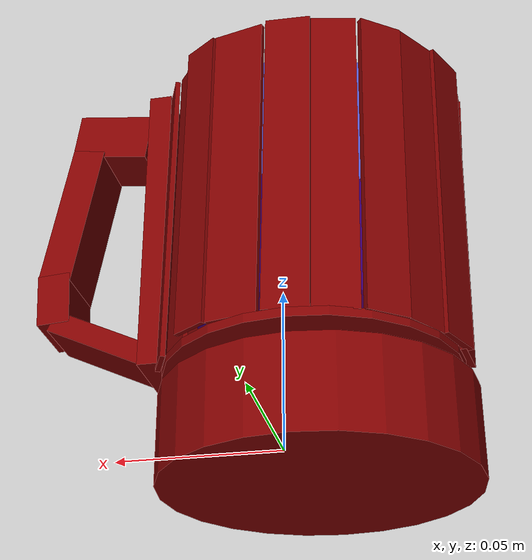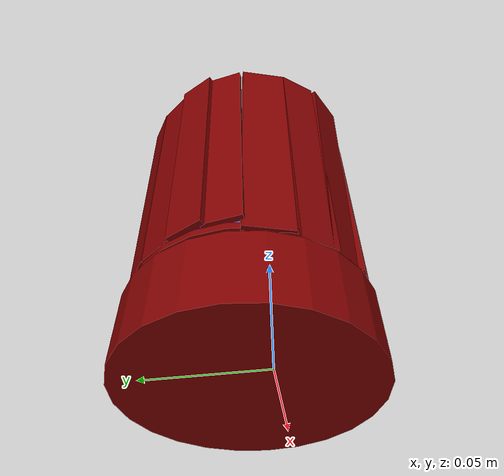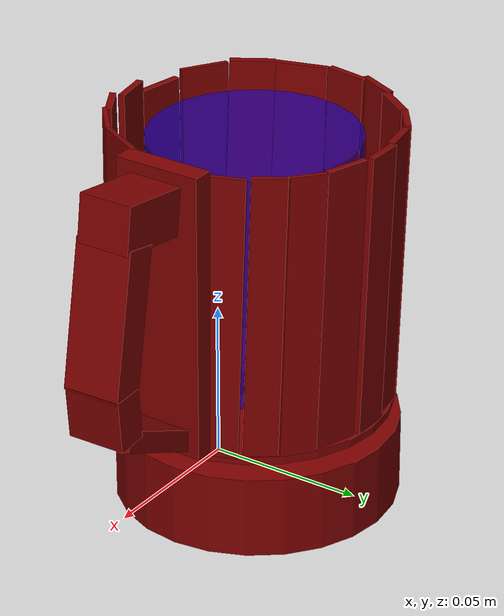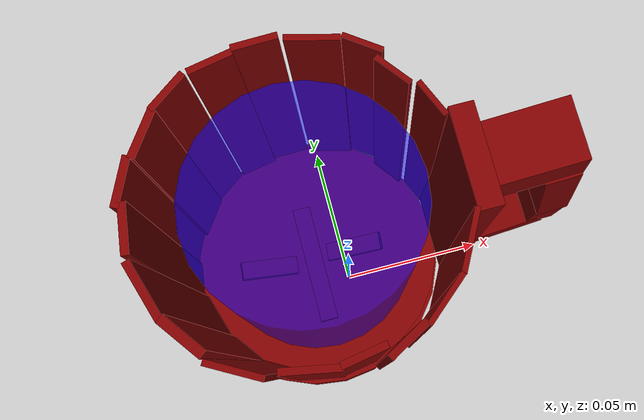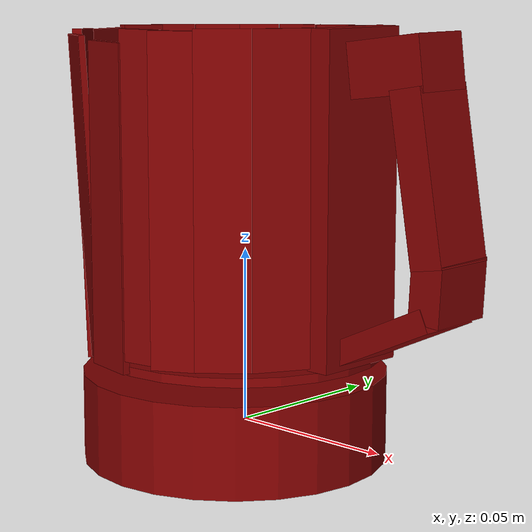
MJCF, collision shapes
<mujoco model="model">
  <option timestep="0.002" gravity="0.0 0.0 -9.81"/>
  <compiler angle="radian"/>
  <asset>
    <mesh file="visuals/blade.obj" name="blade_vis"/>
    <mesh file="visuals/pitcher.obj" name="pitcher_vis"/>
    <mesh file="visuals/pitcher_main.obj" name="pitcher_main_vis"/>
    <texture file="visuals/T_BC001.png" name="pitcher_material" type="2d"/>
    <material name="pitcher_material" rgba="1 1 1 1.0" texture="pitcher_material" shininess="0.7126775979995728" specular="1"/>
    <texture file="visuals/T_BC001.png" name="blade_material" type="2d"/>
    <material name="blade_material" rgba="1 1 1 1.0" texture="blade_material" shininess="0.7126775979995728" specular="1"/>
    <texture file="visuals/T_BC001.png" name="pitcher_main_material" type="2d"/>
    <material name="pitcher_main_material" rgba="1 1 1 0.800000011920929" texture="pitcher_main_material" shininess="0.8092784583568573" specular="1"/>
  </asset>
  <default>
    <default class="visual">
      <geom conaffinity="0" contype="0" group="1" type="mesh"/>
    </default>
    <default class="collision">
      <geom group="0" rgba="0.5 0 0 0.5" density="1.0" solref="0.004 1" solimp="0.998 0.998 0.001"/>
    </default>
    <default class="spawn">
      <geom group="0" rgba="1 1 1 0.5" contype="0" conaffinity="0"/>
      <site group="0" rgba="1 1 1 0.5"/>
    </default>
    <default class="region">
      <geom group="1" conaffinity="0" contype="0" rgba="0 1 0 0" mass="0"/>
    </default>
  </default>
  <worldbody>
    <body>
      <body name="object">
        <body name="pitcher">
          <geom mesh="pitcher_vis" type="mesh" solimp="0.998 0.998 0.001" solref="0.001 1" friction="0.95 0.3 0.1" class="visual" material="pitcher_material"/>
          <geom type="cylinder" pos="-0.01116147 0.00577703 0.00309759" size="0.00906098261475563 0.008652156218886375" quat="1.0 0.0 0.0 0.0" class="collision"/>
          <geom class="collision" type="box" pos="0.06357763 0.00620615 0.07631346" size="0.005088288802653551 0.009546133689582348 0.023384999483823776" quat="0.9961947202682495 0.0 -0.08715573698282242 0.0" name="pitcher_handle_2"/>
          <geom class="collision" type="box" pos="0.05218959 0.00616715 0.10434674" size="0.007519893813878298 0.008824963122606277 0.01210277620702982" quat="0.7518044114112854 -0.0004668088222388178 0.6593855023384094 0.0008093593642115593" name="pitcher_handle_3"/>
          <geom class="collision" type="box" pos="0.05194099 0.00657414 0.03293036" size="0.0033454347867518663 0.009491372853517532 0.016489258036017418" quat="0.843391478061676 0.0 0.5372995734214783 0.0" name="pitcher_handle_0"/>
          <geom type="cylinder" pos="-0.01113476 0.00702684 -0.00106360" size="0.04508111625909805 0.01324945967644453" quat="1.0 0.0 0.0 0.0" class="collision"/>
          <geom class="collision" type="box" pos="0.06706209 0.00668775 0.04700918" size="0.004980669356882572 0.009491369128227234 0.008270477876067162" quat="0.9994047284126282 0.007976321503520012 0.033564552664756775 -0.00021685115643776953" name="pitcher_handle_1"/>
          <body name="blade">
            <geom mesh="blade_vis" type="mesh" solimp="0.998 0.998 0.001" solref="0.001 1" friction="0.95 0.3 0.1" class="visual" material="blade_material"/>
            <geom type="box" pos="-0.01133486 0.00447850 0.02316258" size="0.003073260420933366 0.020795846357941628 0.0011587251210585237" quat="1.0 0.0 0.0 0.0" class="collision"/>
            <geom type="box" pos="-0.02736820 0.00661103 0.02573356" size="0.0030642191413789988 0.010015010833740234 0.0011587272165343165" quat="0.6698104739189148 -0.09623399376869202 0.08818221837282181 -0.7309697866439819" class="collision"/>
            <geom type="box" pos="0.00365382 0.00661103 0.02564197" size="0.0030642191413789988 0.010015010833740234 0.0011587273329496384" quat="0.6653264760971069 0.12802685797214508 -0.11731503903865814 -0.7260764241218567" class="collision"/>
          </body>
          <body name="pitcher_main">
            <geom class="region" type="cylinder" size="0.033242713660001755 0.03796624019742012" pos="-0.00991135 0.00687593 0.06871881" rgba="0 0 1 0.5" name="reg_int"/>
            <geom mesh="pitcher_main_vis" type="mesh" solimp="0.998 0.998 0.001" solref="0.001 1" friction="0.95 0.3 0.1" class="visual" material="pitcher_main_material"/>
            <geom type="box" pos="-0.05201297 -0.00544804 0.06401412" size="0.0011411537416279316 0.008665076456964016 0.04689289629459381" quat="0.9886313080787659 -0.0007852276903577149 -0.02220688760280609 0.14870896935462952" class="collision"/>
            <geom type="box" pos="-0.04462621 -0.01957276 0.06363554" size="0.0013928755652159452 0.007175058592110872 0.047899119555950165" quat="0.9493206143379211 -0.010618006810545921 -0.024758541956543922 0.31315281987190247" class="collision"/>
            <geom type="box" pos="-0.03491062 -0.02905723 0.06356143" size="0.0009027808555401862 0.007999305613338947 0.046975307166576385" quat="0.8626777529716492 0.0040064239874482155 -0.025761159136891365 0.5050815939903259" class="collision"/>
            <geom type="box" pos="0.00641023 -0.03413283 0.06730504" size="0.0010227970778942108 0.00639775674790144 0.04582451283931732" quat="0.49985271692276 0.00337212230078876 -0.0017554215155541897 0.8661020994186401" class="collision"/>
            <geom type="box" pos="0.01845595 -0.02742273 0.06795305" size="0.0007466371753253043 0.007702946662902832 0.04582451656460762" quat="0.4149072468280792 -0.003698088927194476 0.0005286827799864113 0.9098560214042664" class="collision"/>
            <geom type="box" pos="0.03522604 0.00574075 0.06760135" size="0.0034557972103357315 0.01414184644818306 0.04613758996129036" quat="1.0 0.0 0.0 0.0" class="collision"/>
            <geom type="box" pos="0.01651037 0.04200349 0.06642398" size="0.0007405881187878549 0.005810028873383999 0.04582451283931732" quat="0.4493381381034851 0.004741608630865812 -0.01437248196452856 -0.8932335376739502" class="collision"/>
            <geom type="box" pos="0.00408397 0.04678640 0.06605563" size="0.0008923254208639264 0.007550706155598164 0.04582451283931732" quat="0.6081756353378296 0.001975441351532936 -0.015004957094788551 -0.7936581969261169" class="collision"/>
            <geom type="box" pos="-0.03599252 0.04240891 0.06529191" size="0.0009781541302800179 0.006452578119933605 0.04582451283931732" quat="0.8918564915657043 -0.0047164056450128555 -0.014380787499248981 -0.45206522941589355" class="collision"/>
            <geom type="box" pos="-0.04469908 0.03284545 0.06531050" size="0.0011494028149172664 0.007025028578937054 0.04582451656460762" quat="0.9534119963645935 -0.006988314911723137 -0.013424396514892578 -0.30129143595695496" class="collision"/>
            <geom type="cylinder" pos="-0.00994867 0.00754640 0.01852010" size="0.04288448393344879 0.0013050753623247147" quat="1.0 0.0 0.0 0.0" class="collision"/>
            <geom type="box" pos="-0.00497821 -0.03502184 0.06734587" size="0.001022796961478889 0.006397756282240152 0.04582451283931732" quat="0.6432011723518372 0.003626530757173896 -0.0011406076373532414 0.7656878232955933" class="collision"/>
            <geom type="box" pos="-0.01869681 -0.03497289 0.06361109" size="0.0010227971943095326 0.008234738372266293 0.04582451283931732" quat="0.7698814272880554 0.0037721358239650726 -0.0004729782813228667 0.6381756067276001" class="collision"/>
            <geom type="box" pos="-0.05242275 0.02184720 0.06538087" size="0.0011494026985019445 0.007025028113275766 0.04582451656460762" quat="0.9765552878379822 -0.00816198717802763 -0.012744918465614319 -0.2147340178489685" class="collision"/>
            <geom type="box" pos="-0.05422102 0.00973624 0.06560187" size="0.0011494028149172664 0.007025029044598341 0.04582451656460762" quat="0.9976705312728882 -0.009973459877073765 -0.011383378878235817 -0.06651640683412552" class="collision"/>
            <geom type="box" pos="-0.02339473 0.04737251 0.06545511" size="0.0009781541302800179 0.006452578119933605 0.04582451283931732" quat="0.7688629031181335 -0.0013972119195386767 -0.015069808810949326 -0.6392345428466797" class="collision"/>
            <geom type="box" pos="-0.01078633 0.04971658 0.06567467" size="0.000978154013864696 0.006452578119933605 0.04582451283931732" quat="0.7119560837745667 -0.00011576183896977454 -0.015133999288082123 -0.702060878276825" class="collision"/>
            <geom type="box" pos="0.02234555 0.03313158 0.06549271" size="0.000740588060580194 0.005810028873383999 0.04582451283931732" quat="0.3184846043586731 0.006726743653416634 -0.01355736143887043 -0.9478071928024292" class="collision"/>
            <geom type="box" pos="0.03010196 0.02289193 0.06587805" size="0.0007405880023725331 0.005810028873383999 0.04582451283931732" quat="0.1984029859304428 0.008357164449989796 -0.012617831118404865 -0.9800036549568176" class="collision"/>
            <geom type="box" pos="0.02824378 -0.01489266 0.06796412" size="0.0007466371171176434 0.00865502841770649 0.04582451283931732" quat="0.23986472189426422 -0.0035369955003261566 0.0012020895956084132 0.9707991480827332" class="collision"/>
          </body>
        </body>
        <geom class="region" name="reg_bbox" density="0" type="box" pos="0.0062929999999999965 0.0068080000000000016 0.0493035" size="0.067915 0.0479575 0.06419"/>
      </body>
      <site rgba="0 1 0 0" size="0.005" pos="-0.00489641 0.00664501 0.12470886" name="anchor_site"/>
    </body>
  </worldbody>
</mujoco>
